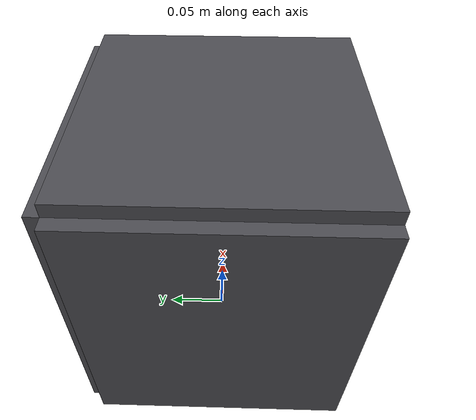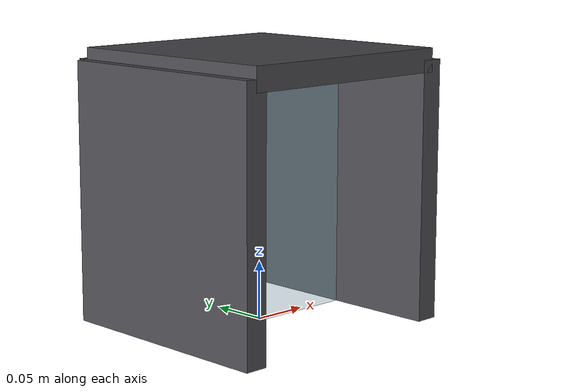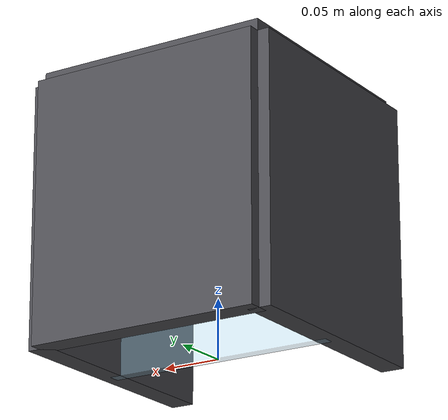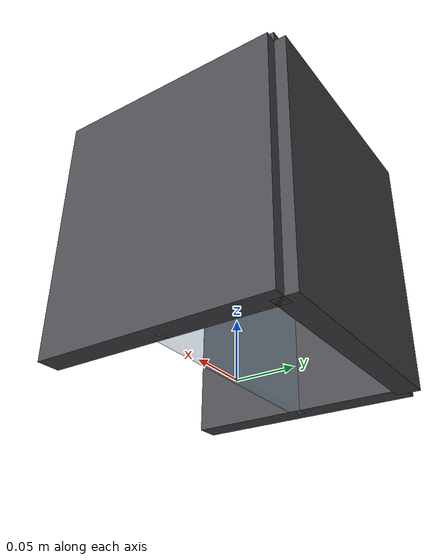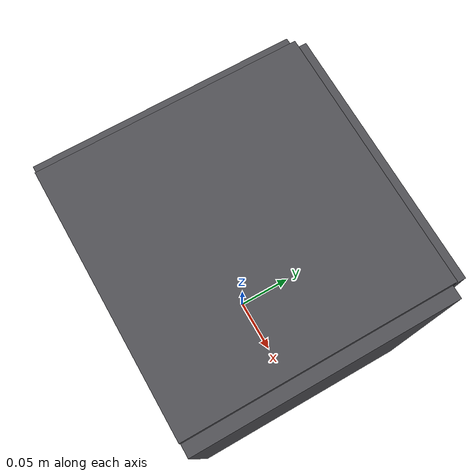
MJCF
<?xml version="1.0" encoding="utf-8"?>
<mujoco model="uv_weathering_chamber">
  <compiler angle="radian" autolimits="true"/>
  <default>
    <default class="body"><geom contype="1" conaffinity="1"/></default>
  </default>
  <worldbody>
    <body name="base">
      <geom type="box" size="0.1 0.01 0.11" pos="0 0.1 0.11" rgba="0.3 0.3 0.32 1" class="body"/>
      <geom type="box" size="0.01 0.1 0.11" pos="-0.1 0 0.11" rgba="0.3 0.3 0.32 1" class="body"/>
      <geom type="box" size="0.01 0.1 0.11" pos="0.1 0 0.11" rgba="0.3 0.3 0.32 1" class="body"/>
      <geom type="box" size="0.1 0.1 0.01" pos="0 0 0.22" rgba="0.3 0.3 0.32 1" class="body"/>
      <geom type="box" size="0.08 0.005 0.01" pos="0 0.005 0.20" rgba="0.6 0.85 0.95 0.8" class="body"/>
      <body name="door" pos="-0.1 0.0 0.11">
        <joint name="door_joint" type="hinge" axis="0 0 1" range="0 1.8" damping="0.6" frictionloss="0.3"/>
  <geom type="box" size="0.1 0.005 0.11" pos="0.1 0 0" rgba="0.6 0.8 0.9 0.35" class="body"/>
      </body>
    </body>
  </worldbody>
</mujoco>
